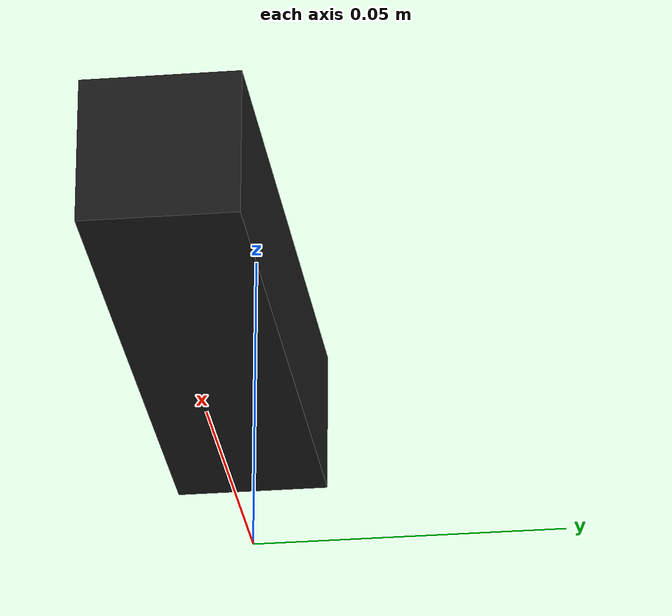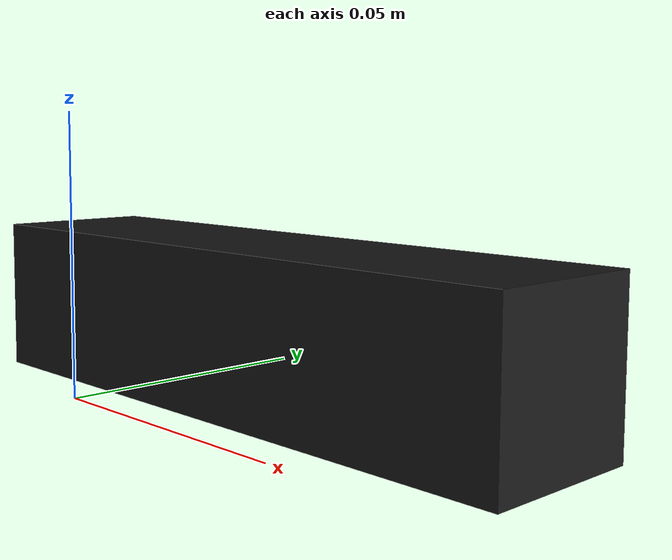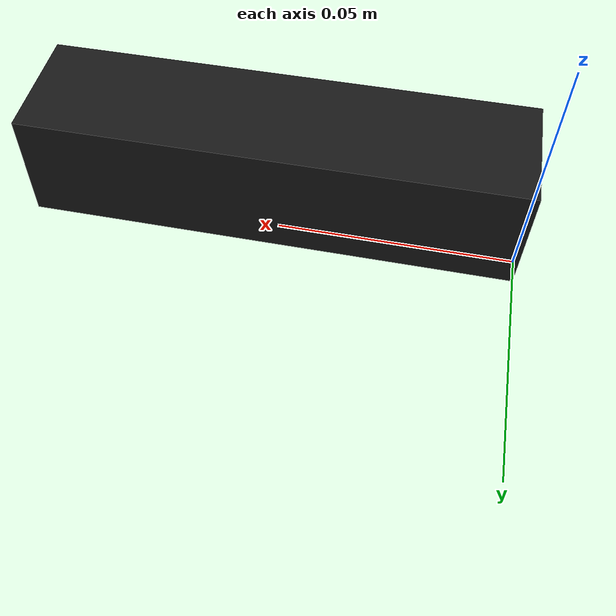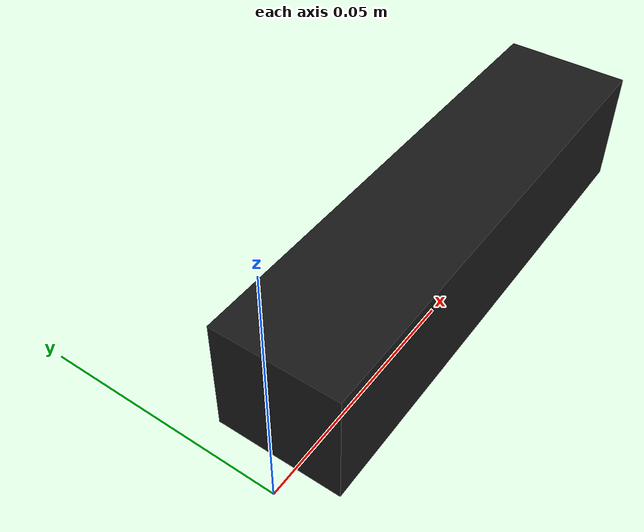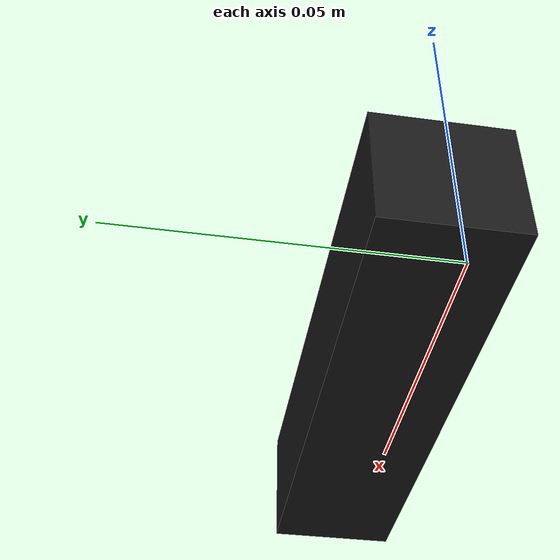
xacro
<?xml version="1.0"?>
<robot name="s500_drone" xmlns:xacro="http://www.ros.org/wiki/xacro">

  <link name="base_link">
    <inertial>
      <!-- Approximate drone mass without battery: ~1.5 kg (HolyBro S500 V2) -->
      <mass value="1.5"/>
      <origin xyz="0 0 0" rpy="0 0 0"/>
      <inertia ixx="0.029" ixy="0" ixz="0"
               iyy="0.029" iyz="0"
               izz="0.055"/>
    </inertial>
  </link>

  <joint name="base_to_oak_camera" type="fixed">
    <parent link="base_link"/>
    <child link="oak_camera_frame"/>
    <origin xyz="0.05 0.0 0.02" rpy="0.0 0.0 0.0"/>
  </joint>

  <link name="oak_camera_frame">
    <inertial>
      <!-- OAK-S2 mass: ~72g -->
      <mass value="0.072"/>
      <origin xyz="0 0 0" rpy="0 0 0"/>
      <inertia ixx="0.0001" ixy="0" ixz="0"
               iyy="0.0001" iyz="0"
               izz="0.0001"/>
    </inertial>
    <!-- Simplified box geometry for RViz visualization -->
    <visual>
      <geometry>
        <box size="0.097 0.024 0.023"/>
      </geometry>
      <material name="black">
        <color rgba="0.1 0.1 0.1 1.0"/>
      </material>
    </visual>
  </link>

  <joint name="oak_to_imu" type="fixed">
    <parent link="oak_camera_frame"/>
    <child link="oak_imu_frame"/>
    <!-- IMU is integrated inside the camera — negligible offset -->
    <origin xyz="0.0 0.0 0.0" rpy="0.0 0.0 0.0"/>
  </joint>

  <link name="oak_imu_frame"/>

  <joint name="oak_to_rgb_frame" type="fixed">
    <parent link="oak_camera_frame"/>
    <child link="oak_rgb_camera_frame"/>
    <origin xyz="0.0 0.0 0.0" rpy="0.0 0.0 0.0"/>
  </joint>

  <link name="oak_rgb_camera_frame"/>

  <joint name="oak_rgb_to_optical_frame" type="fixed">
    <parent link="oak_rgb_camera_frame"/>
    <child link="oak_rgb_camera_optical_frame"/>
    <origin xyz="0.0 0.0 0.0" rpy="-1.57079632679 0.0 -1.57079632679"/>
  </joint>

  <link name="oak_rgb_camera_optical_frame"/>

  <!-- Alias link for camera root 'oak' used by depthai-ros -->
  <joint name="oak_camera_to_oak_alias" type="fixed">
    <parent link="oak_camera_frame"/>
    <child link="oak"/>
    <origin xyz="0.0 0.0 0.0" rpy="0.0 0.0 0.0"/>
  </joint>

  <link name="oak"/>

</robot>
